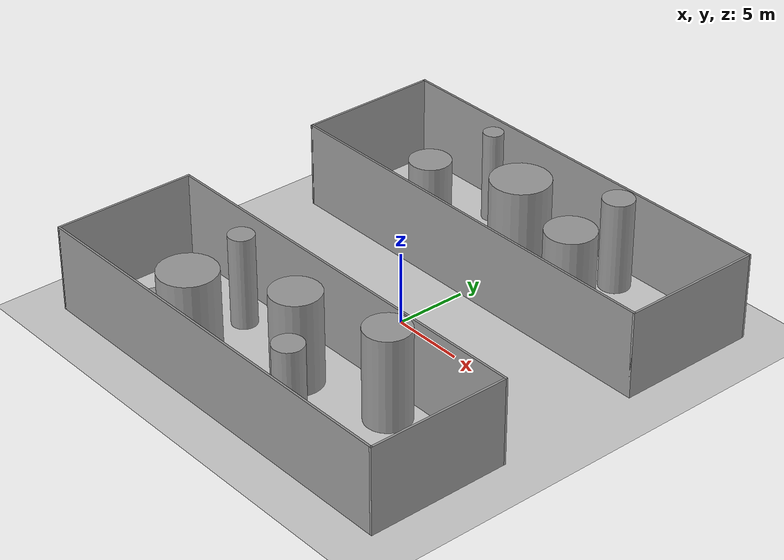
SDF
<sdf version="1.6">
 <world name="default">
  <light name="sun" type="directional">
   <pose>0 0 10 0 -0 0</pose>
   <diffuse>0.8 0.8 0.8 1</diffuse>
   <specular>0.2 0.2 0.2 1</specular>
   <attenuation>
    <range>1000</range>
    <constant>0.9</constant>
    <linear>0.01</linear>
    <quadratic>0.001</quadratic>
   </attenuation>
   <direction>-0.5 0.1 -0.9</direction>
  </light>
  <model name="ground_plane">
   <static>1</static>
   <link name="link">
    <collision name="collision">
     <geometry><plane><normal>0 0 1</normal><size>100 100</size></plane></geometry>
     <surface>
      <contact><collide_bitmask>65535</collide_bitmask></contact>
      <friction><ode><mu>100</mu><mu2>50</mu2></ode></friction>
     </surface>
    </collision>
    <visual name="visual">
     <cast_shadows>0</cast_shadows>
     <geometry><plane><normal>0 0 1</normal><size>100 100</size></plane></geometry>
     <material>
      <script><uri>file://media/materials/scripts/gazebo.material</uri><name>Gazebo/Grey</name></script>
     </material>
    </visual>
   </link>
  </model>
  <gravity>0 0 -9.8</gravity>
  <magnetic_field>6e-06 2.3e-05 -4.2e-05</magnetic_field>
  <atmosphere type="adiabatic"/>
  <physics name="default_physics" default="0" type="ode">
   <max_step_size>0.001</max_step_size>
   <real_time_factor>1</real_time_factor>
   <real_time_update_rate>1000</real_time_update_rate>
  </physics>
  <scene><ambient>0.4 0.4 0.4 1</ambient><background>0.7 0.7 0.7 1</background><shadows>1</shadows></scene>
  <spherical_coordinates>
   <surface_model>EARTH_WGS84</surface_model>
   <latitude_deg>0</latitude_deg>
   <longitude_deg>0</longitude_deg>
   <elevation>0</elevation>
   <heading_deg>0</heading_deg>
  </spherical_coordinates>
  <model name="static_cylinder_clone">
   <link name="link">
    <inertial>
     <mass>1</mass>
     <inertia><ixx>0.145833</ixx><ixy>0</ixy><ixz>0</ixz><iyy>0.145833</iyy><iyz>0</iyz><izz>0.125</izz></inertia>
    </inertial>
    <visual name="visual">
     <geometry><cylinder><radius>1.02374</radius><length>6.41794</length></cylinder></geometry>
     <material>
      <script><name>Gazebo/Grey</name><uri>file://media/materials/scripts/gazebo.material</uri></script>
      <shader type="pixel"/>
      <ambient>0.3 0.3 0.3 1</ambient>
      <diffuse>0.7 0.7 0.7 1</diffuse>
      <specular>0.01 0.01 0.01 1</specular>
      <emissive>0 0 0 1</emissive>
     </material>
    </visual>
    <collision name="collision">
     <geometry><cylinder><radius>1.02374</radius><length>6.41794</length></cylinder></geometry>
     <surface>
      <friction>
       <ode><mu>1</mu><mu2>1</mu2><fdir1>0 0 0</fdir1><slip1>0</slip1><slip2>0</slip2></ode>
       <torsional>
        <coefficient>1</coefficient>
        <patch_radius>0</patch_radius>
        <surface_radius>0</surface_radius>
        <use_patch_radius>1</use_patch_radius>
        <ode><slip>0</slip></ode>
       </torsional>
      </friction>
      <bounce><restitution_coefficient>0</restitution_coefficient><threshold>1e+06</threshold></bounce>
      <contact>
       <collide_without_contact>0</collide_without_contact>
       <collide_without_contact_bitmask>1</collide_without_contact_bitmask>
       <collide_bitmask>1</collide_bitmask>
       <ode>
        <soft_cfm>0</soft_cfm>
        <soft_erp>0.2</soft_erp>
        <kp>1e+13</kp>
        <kd>1</kd>
        <max_vel>0.01</max_vel>
        <min_depth>0</min_depth>
       </ode>
       <bullet>
        <split_impulse>1</split_impulse>
        <split_impulse_penetration_threshold>-0.01</split_impulse_penetration_threshold>
        <soft_cfm>0</soft_cfm>
        <soft_erp>0.2</soft_erp>
        <kp>1e+13</kp>
        <kd>1</kd>
       </bullet>
      </contact>
     </surface>
    </collision>
   </link>
   <static>1</static>
   <pose>4.80393 -12.5539 3.22951 0 -0 0</pose>
  </model>
  <model name="static_cylinder_clone_0">
   <link name="link">
    <inertial>
     <mass>1</mass>
     <inertia><ixx>0.145833</ixx><ixy>0</ixy><ixz>0</ixz><iyy>0.145833</iyy><iyz>0</iyz><izz>0.125</izz></inertia>
    </inertial>
    <visual name="visual">
     <geometry><cylinder><radius>1.54102</radius><length>6.41794</length></cylinder></geometry>
     <material>
      <script><name>Gazebo/Grey</name><uri>file://media/materials/scripts/gazebo.material</uri></script>
      <shader type="pixel"/>
      <ambient>0.3 0.3 0.3 1</ambient>
      <diffuse>0.7 0.7 0.7 1</diffuse>
      <specular>0.01 0.01 0.01 1</specular>
      <emissive>0 0 0 1</emissive>
     </material>
    </visual>
    <collision name="collision">
     <geometry><cylinder><radius>1.54102</radius><length>6.41794</length></cylinder></geometry>
     <surface>
      <friction>
       <ode><mu>1</mu><mu2>1</mu2><fdir1>0 0 0</fdir1><slip1>0</slip1><slip2>0</slip2></ode>
       <torsional>
        <coefficient>1</coefficient>
        <patch_radius>0</patch_radius>
        <surface_radius>0</surface_radius>
        <use_patch_radius>1</use_patch_radius>
        <ode><slip>0</slip></ode>
       </torsional>
      </friction>
      <bounce><restitution_coefficient>0</restitution_coefficient><threshold>1e+06</threshold></bounce>
      <contact>
       <collide_without_contact>0</collide_without_contact>
       <collide_without_contact_bitmask>1</collide_without_contact_bitmask>
       <collide_bitmask>1</collide_bitmask>
       <ode>
        <soft_cfm>0</soft_cfm>
        <soft_erp>0.2</soft_erp>
        <kp>1e+13</kp>
        <kd>1</kd>
        <max_vel>0.01</max_vel>
        <min_depth>0</min_depth>
       </ode>
       <bullet>
        <split_impulse>1</split_impulse>
        <split_impulse_penetration_threshold>-0.01</split_impulse_penetration_threshold>
        <soft_cfm>0</soft_cfm>
        <soft_erp>0.2</soft_erp>
        <kp>1e+13</kp>
        <kd>1</kd>
       </bullet>
      </contact>
     </surface>
    </collision>
   </link>
   <static>1</static>
   <pose>7.21776 -7.21536 3.22951 0 -0 0</pose>
  </model>
  <model name="static_cylinder_clone_3">
   <link name="link">
    <inertial>
     <mass>1</mass>
     <inertia><ixx>0.145833</ixx><ixy>0</ixy><ixz>0</ixz><iyy>0.145833</iyy><iyz>0</iyz><izz>0.125</izz></inertia>
    </inertial>
    <visual name="visual">
     <geometry><cylinder><radius>1.68342</radius><length>6.41794</length></cylinder></geometry>
     <material>
      <script><name>Gazebo/Grey</name><uri>file://media/materials/scripts/gazebo.material</uri></script>
      <shader type="pixel"/>
      <ambient>0.3 0.3 0.3 1</ambient>
      <diffuse>0.7 0.7 0.7 1</diffuse>
      <specular>0.01 0.01 0.01 1</specular>
      <emissive>0 0 0 1</emissive>
     </material>
    </visual>
    <collision name="collision">
     <geometry><cylinder><radius>1.68342</radius><length>6.41794</length></cylinder></geometry>
     <surface>
      <friction>
       <ode><mu>1</mu><mu2>1</mu2><fdir1>0 0 0</fdir1><slip1>0</slip1><slip2>0</slip2></ode>
       <torsional>
        <coefficient>1</coefficient>
        <patch_radius>0</patch_radius>
        <surface_radius>0</surface_radius>
        <use_patch_radius>1</use_patch_radius>
        <ode><slip>0</slip></ode>
       </torsional>
      </friction>
      <bounce><restitution_coefficient>0</restitution_coefficient><threshold>1e+06</threshold></bounce>
      <contact>
       <collide_without_contact>0</collide_without_contact>
       <collide_without_contact_bitmask>1</collide_without_contact_bitmask>
       <collide_bitmask>1</collide_bitmask>
       <ode>
        <soft_cfm>0</soft_cfm>
        <soft_erp>0.2</soft_erp>
        <kp>1e+13</kp>
        <kd>1</kd>
        <max_vel>0.01</max_vel>
        <min_depth>0</min_depth>
       </ode>
       <bullet>
        <split_impulse>1</split_impulse>
        <split_impulse_penetration_threshold>-0.01</split_impulse_penetration_threshold>
        <soft_cfm>0</soft_cfm>
        <soft_erp>0.2</soft_erp>
        <kp>1e+13</kp>
        <kd>1</kd>
       </bullet>
      </contact>
     </surface>
    </collision>
   </link>
   <static>1</static>
   <pose>0.783836 -8.83531 3.22951 0 -0 0</pose>
  </model>
  <model name="static_cylinder_clone_4">
   <link name="link">
    <inertial>
     <mass>1</mass>
     <inertia><ixx>0.145833</ixx><ixy>0</ixy><ixz>0</ixz><iyy>0.145833</iyy><iyz>0</iyz><izz>0.125</izz></inertia>
    </inertial>
    <visual name="visual">
     <geometry><cylinder><radius>1.95541</radius><length>6.41794</length></cylinder></geometry>
     <material>
      <script><name>Gazebo/Grey</name><uri>file://media/materials/scripts/gazebo.material</uri></script>
      <shader type="pixel"/>
      <ambient>0.3 0.3 0.3 1</ambient>
      <diffuse>0.7 0.7 0.7 1</diffuse>
      <specular>0.01 0.01 0.01 1</specular>
      <emissive>0 0 0 1</emissive>
     </material>
    </visual>
    <collision name="collision">
     <geometry><cylinder><radius>1.95541</radius><length>6.41794</length></cylinder></geometry>
     <surface>
      <friction>
       <ode><mu>1</mu><mu2>1</mu2><fdir1>0 0 0</fdir1><slip1>0</slip1><slip2>0</slip2></ode>
       <torsional>
        <coefficient>1</coefficient>
        <patch_radius>0</patch_radius>
        <surface_radius>0</surface_radius>
        <use_patch_radius>1</use_patch_radius>
        <ode><slip>0</slip></ode>
       </torsional>
      </friction>
      <bounce><restitution_coefficient>0</restitution_coefficient><threshold>1e+06</threshold></bounce>
      <contact>
       <collide_without_contact>0</collide_without_contact>
       <collide_without_contact_bitmask>1</collide_without_contact_bitmask>
       <collide_bitmask>1</collide_bitmask>
       <ode>
        <soft_cfm>0</soft_cfm>
        <soft_erp>0.2</soft_erp>
        <kp>1e+13</kp>
        <kd>1</kd>
        <max_vel>0.01</max_vel>
        <min_depth>0</min_depth>
       </ode>
       <bullet>
        <split_impulse>1</split_impulse>
        <split_impulse_penetration_threshold>-0.01</split_impulse_penetration_threshold>
        <soft_cfm>0</soft_cfm>
        <soft_erp>0.2</soft_erp>
        <kp>1e+13</kp>
        <kd>1</kd>
       </bullet>
      </contact>
     </surface>
    </collision>
   </link>
   <static>1</static>
   <pose>-5.18882 -12.2711 3.22951 0 -0 0</pose>
  </model>
  <model name="static_cylinder_clone_5">
   <link name="link">
    <inertial>
     <mass>1</mass>
     <inertia><ixx>0.145833</ixx><ixy>0</ixy><ixz>0</ixz><iyy>0.145833</iyy><iyz>0</iyz><izz>0.125</izz></inertia>
    </inertial>
    <visual name="visual">
     <geometry><cylinder><radius>0.869875</radius><length>6.41794</length></cylinder></geometry>
     <material>
      <script><name>Gazebo/Grey</name><uri>file://media/materials/scripts/gazebo.material</uri></script>
      <shader type="pixel"/>
      <ambient>0.3 0.3 0.3 1</ambient>
      <diffuse>0.7 0.7 0.7 1</diffuse>
      <specular>0.01 0.01 0.01 1</specular>
      <emissive>0 0 0 1</emissive>
     </material>
    </visual>
    <collision name="collision">
     <geometry><cylinder><radius>0.869875</radius><length>6.41794</length></cylinder></geometry>
     <surface>
      <friction>
       <ode><mu>1</mu><mu2>1</mu2><fdir1>0 0 0</fdir1><slip1>0</slip1><slip2>0</slip2></ode>
       <torsional>
        <coefficient>1</coefficient>
        <patch_radius>0</patch_radius>
        <surface_radius>0</surface_radius>
        <use_patch_radius>1</use_patch_radius>
        <ode><slip>0</slip></ode>
       </torsional>
      </friction>
      <bounce><restitution_coefficient>0</restitution_coefficient><threshold>1e+06</threshold></bounce>
      <contact>
       <collide_without_contact>0</collide_without_contact>
       <collide_without_contact_bitmask>1</collide_without_contact_bitmask>
       <collide_bitmask>1</collide_bitmask>
       <ode>
        <soft_cfm>0</soft_cfm>
        <soft_erp>0.2</soft_erp>
        <kp>1e+13</kp>
        <kd>1</kd>
        <max_vel>0.01</max_vel>
        <min_depth>0</min_depth>
       </ode>
       <bullet>
        <split_impulse>1</split_impulse>
        <split_impulse_penetration_threshold>-0.01</split_impulse_penetration_threshold>
        <soft_cfm>0</soft_cfm>
        <soft_erp>0.2</soft_erp>
        <kp>1e+13</kp>
        <kd>1</kd>
       </bullet>
      </contact>
     </surface>
    </collision>
   </link>
   <static>1</static>
   <pose>-6.38748 -7.36179 3.22951 0 -0 0</pose>
  </model>
  <model name="static_cylinder_clone_2">
   <link name="link">
    <inertial>
     <mass>1</mass>
     <inertia><ixx>0.145833</ixx><ixy>0</ixy><ixz>0</ixz><iyy>0.145833</iyy><iyz>0</iyz><izz>0.125</izz></inertia>
    </inertial>
    <visual name="visual">
     <geometry><cylinder><radius>1.07394</radius><length>6.41794</length></cylinder></geometry>
     <material>
      <script><name>Gazebo/Grey</name><uri>file://media/materials/scripts/gazebo.material</uri></script>
      <shader type="pixel"/>
      <ambient>0.3 0.3 0.3 1</ambient>
      <diffuse>0.7 0.7 0.7 1</diffuse>
      <specular>0.01 0.01 0.01 1</specular>
      <emissive>0 0 0 1</emissive>
     </material>
    </visual>
    <collision name="collision">
     <geometry><cylinder><radius>1.07394</radius><length>6.41794</length></cylinder></geometry>
     <surface>
      <friction>
       <ode><mu>1</mu><mu2>1</mu2><fdir1>0 0 0</fdir1><slip1>0</slip1><slip2>0</slip2></ode>
       <torsional>
        <coefficient>1</coefficient>
        <patch_radius>0</patch_radius>
        <surface_radius>0</surface_radius>
        <use_patch_radius>1</use_patch_radius>
        <ode><slip>0</slip></ode>
       </torsional>
      </friction>
      <bounce><restitution_coefficient>0</restitution_coefficient><threshold>1e+06</threshold></bounce>
      <contact>
       <collide_without_contact>0</collide_without_contact>
       <collide_without_contact_bitmask>1</collide_without_contact_bitmask>
       <collide_bitmask>1</collide_bitmask>
       <ode>
        <soft_cfm>0</soft_cfm>
        <soft_erp>0.2</soft_erp>
        <kp>1e+13</kp>
        <kd>1</kd>
        <max_vel>0.01</max_vel>
        <min_depth>0</min_depth>
       </ode>
       <bullet>
        <split_impulse>1</split_impulse>
        <split_impulse_penetration_threshold>-0.01</split_impulse_penetration_threshold>
        <soft_cfm>0</soft_cfm>
        <soft_erp>0.2</soft_erp>
        <kp>1e+13</kp>
        <kd>1</kd>
       </bullet>
      </contact>
     </surface>
    </collision>
   </link>
   <static>1</static>
   <pose>5.5495 13.1609 3.22951 0 -0 0</pose>
  </model>
  <model name="static_cylinder_clone_7">
   <link name="link">
    <inertial>
     <mass>1</mass>
     <inertia><ixx>0.145833</ixx><ixy>0</ixy><ixz>0</ixz><iyy>0.145833</iyy><iyz>0</iyz><izz>0.125</izz></inertia>
    </inertial>
    <visual name="visual">
     <geometry><cylinder><radius>1.70261</radius><length>6.41794</length></cylinder></geometry>
     <material>
      <script><name>Gazebo/Grey</name><uri>file://media/materials/scripts/gazebo.material</uri></script>
      <shader type="pixel"/>
      <ambient>0.3 0.3 0.3 1</ambient>
      <diffuse>0.7 0.7 0.7 1</diffuse>
      <specular>0.01 0.01 0.01 1</specular>
      <emissive>0 0 0 1</emissive>
     </material>
    </visual>
    <collision name="collision">
     <geometry><cylinder><radius>1.70261</radius><length>6.41794</length></cylinder></geometry>
     <surface>
      <friction>
       <ode><mu>1</mu><mu2>1</mu2><fdir1>0 0 0</fdir1><slip1>0</slip1><slip2>0</slip2></ode>
       <torsional>
        <coefficient>1</coefficient>
        <patch_radius>0</patch_radius>
        <surface_radius>0</surface_radius>
        <use_patch_radius>1</use_patch_radius>
        <ode><slip>0</slip></ode>
       </torsional>
      </friction>
      <bounce><restitution_coefficient>0</restitution_coefficient><threshold>1e+06</threshold></bounce>
      <contact>
       <collide_without_contact>0</collide_without_contact>
       <collide_without_contact_bitmask>1</collide_without_contact_bitmask>
       <collide_bitmask>1</collide_bitmask>
       <ode>
        <soft_cfm>0</soft_cfm>
        <soft_erp>0.2</soft_erp>
        <kp>1e+13</kp>
        <kd>1</kd>
        <max_vel>0.01</max_vel>
        <min_depth>0</min_depth>
       </ode>
       <bullet>
        <split_impulse>1</split_impulse>
        <split_impulse_penetration_threshold>-0.01</split_impulse_penetration_threshold>
        <soft_cfm>0</soft_cfm>
        <soft_erp>0.2</soft_erp>
        <kp>1e+13</kp>
        <kd>1</kd>
       </bullet>
      </contact>
     </surface>
    </collision>
   </link>
   <static>1</static>
   <pose>6.34646 8.215 3.22951 0 -0 0</pose>
  </model>
  <model name="static_cylinder_clone_8">
   <link name="link">
    <inertial>
     <mass>1</mass>
     <inertia><ixx>0.145833</ixx><ixy>0</ixy><ixz>0</ixz><iyy>0.145833</iyy><iyz>0</iyz><izz>0.125</izz></inertia>
    </inertial>
    <visual name="visual">
     <geometry><cylinder><radius>0.694724</radius><length>6.41794</length></cylinder></geometry>
     <material>
      <script><name>Gazebo/Grey</name><uri>file://media/materials/scripts/gazebo.material</uri></script>
      <shader type="pixel"/>
      <ambient>0.3 0.3 0.3 1</ambient>
      <diffuse>0.7 0.7 0.7 1</diffuse>
      <specular>0.01 0.01 0.01 1</specular>
      <emissive>0 0 0 1</emissive>
     </material>
    </visual>
    <collision name="collision">
     <geometry><cylinder><radius>0.694724</radius><length>6.41794</length></cylinder></geometry>
     <surface>
      <friction>
       <ode><mu>1</mu><mu2>1</mu2><fdir1>0 0 0</fdir1><slip1>0</slip1><slip2>0</slip2></ode>
       <torsional>
        <coefficient>1</coefficient>
        <patch_radius>0</patch_radius>
        <surface_radius>0</surface_radius>
        <use_patch_radius>1</use_patch_radius>
        <ode><slip>0</slip></ode>
       </torsional>
      </friction>
      <bounce><restitution_coefficient>0</restitution_coefficient><threshold>1e+06</threshold></bounce>
      <contact>
       <collide_without_contact>0</collide_without_contact>
       <collide_without_contact_bitmask>1</collide_without_contact_bitmask>
       <collide_bitmask>1</collide_bitmask>
       <ode>
        <soft_cfm>0</soft_cfm>
        <soft_erp>0.2</soft_erp>
        <kp>1e+13</kp>
        <kd>1</kd>
        <max_vel>0.01</max_vel>
        <min_depth>0</min_depth>
       </ode>
       <bullet>
        <split_impulse>1</split_impulse>
        <split_impulse_penetration_threshold>-0.01</split_impulse_penetration_threshold>
        <soft_cfm>0</soft_cfm>
        <soft_erp>0.2</soft_erp>
        <kp>1e+13</kp>
        <kd>1</kd>
       </bullet>
      </contact>
     </surface>
    </collision>
   </link>
   <static>1</static>
   <pose>-5.85757 12.9997 3.22951 0 -0 0</pose>
  </model>
  <model name="static_cylinder_clone_9">
   <link name="link">
    <inertial>
     <mass>1</mass>
     <inertia><ixx>0.145833</ixx><ixy>0</ixy><ixz>0</ixz><iyy>0.145833</iyy><iyz>0</iyz><izz>0.125</izz></inertia>
    </inertial>
    <visual name="visual">
     <geometry><cylinder><radius>2.03743</radius><length>6.41794</length></cylinder></geometry>
     <material>
      <script><name>Gazebo/Grey</name><uri>file://media/materials/scripts/gazebo.material</uri></script>
      <shader type="pixel"/>
      <ambient>0.3 0.3 0.3 1</ambient>
      <diffuse>0.7 0.7 0.7 1</diffuse>
      <specular>0.01 0.01 0.01 1</specular>
      <emissive>0 0 0 1</emissive>
     </material>
    </visual>
    <collision name="collision">
     <geometry><cylinder><radius>2.03743</radius><length>6.41794</length></cylinder></geometry>
     <surface>
      <friction>
       <ode><mu>1</mu><mu2>1</mu2><fdir1>0 0 0</fdir1><slip1>0</slip1><slip2>0</slip2></ode>
       <torsional>
        <coefficient>1</coefficient>
        <patch_radius>0</patch_radius>
        <surface_radius>0</surface_radius>
        <use_patch_radius>1</use_patch_radius>
        <ode><slip>0</slip></ode>
       </torsional>
      </friction>
      <bounce><restitution_coefficient>0</restitution_coefficient><threshold>1e+06</threshold></bounce>
      <contact>
       <collide_without_contact>0</collide_without_contact>
       <collide_without_contact_bitmask>1</collide_without_contact_bitmask>
       <collide_bitmask>1</collide_bitmask>
       <ode>
        <soft_cfm>0</soft_cfm>
        <soft_erp>0.2</soft_erp>
        <kp>1e+13</kp>
        <kd>1</kd>
        <max_vel>0.01</max_vel>
        <min_depth>0</min_depth>
       </ode>
       <bullet>
        <split_impulse>1</split_impulse>
        <split_impulse_penetration_threshold>-0.01</split_impulse_penetration_threshold>
        <soft_cfm>0</soft_cfm>
        <soft_erp>0.2</soft_erp>
        <kp>1e+13</kp>
        <kd>1</kd>
       </bullet>
      </contact>
     </surface>
    </collision>
   </link>
   <static>1</static>
   <pose>-0.212018 10.1738 3.22951 0 -0 0</pose>
  </model>
  <model name="static_cylinder_clone_10_clone">
   <link name="link">
    <inertial>
     <mass>1</mass>
     <inertia><ixx>0.145833</ixx><ixy>0</ixy><ixz>0</ixz><iyy>0.145833</iyy><iyz>0</iyz><izz>0.125</izz></inertia>
    </inertial>
    <visual name="visual">
     <geometry><cylinder><radius>1.35079</radius><length>0.201391</length></cylinder></geometry>
     <material>
      <script><name>Gazebo/Grey</name><uri>file://media/materials/scripts/gazebo.material</uri></script>
      <shader type="pixel"/>
      <ambient>0.3 0.3 0.3 1</ambient>
      <diffuse>0.7 0.7 0.7 1</diffuse>
      <specular>0.01 0.01 0.01 1</specular>
      <emissive>0 0 0 1</emissive>
     </material>
    </visual>
    <collision name="collision">
     <geometry><cylinder><radius>1.35079</radius><length>0.201391</length></cylinder></geometry>
     <surface>
      <friction>
       <ode><mu>1</mu><mu2>1</mu2><fdir1>0 0 0</fdir1><slip1>0</slip1><slip2>0</slip2></ode>
       <torsional>
        <coefficient>1</coefficient>
        <patch_radius>0</patch_radius>
        <surface_radius>0</surface_radius>
        <use_patch_radius>1</use_patch_radius>
        <ode><slip>0</slip></ode>
       </torsional>
      </friction>
      <bounce><restitution_coefficient>0</restitution_coefficient><threshold>1e+06</threshold></bounce>
      <contact>
       <collide_without_contact>0</collide_without_contact>
       <collide_without_contact_bitmask>1</collide_without_contact_bitmask>
       <collide_bitmask>1</collide_bitmask>
       <ode>
        <soft_cfm>0</soft_cfm>
        <soft_erp>0.2</soft_erp>
        <kp>1e+13</kp>
        <kd>1</kd>
        <max_vel>0.01</max_vel>
        <min_depth>0</min_depth>
       </ode>
       <bullet>
        <split_impulse>1</split_impulse>
        <split_impulse_penetration_threshold>-0.01</split_impulse_penetration_threshold>
        <soft_cfm>0</soft_cfm>
        <soft_erp>0.2</soft_erp>
        <kp>1e+13</kp>
        <kd>1</kd>
       </bullet>
      </contact>
     </surface>
    </collision>
   </link>
   <static>1</static>
   <pose>12 10 0 0 -0 0</pose>
  </model>
  <model name="static_cylinder_clone_10_clone_clone">
   <link name="link">
    <inertial>
     <mass>1</mass>
     <inertia><ixx>0.145833</ixx><ixy>0</ixy><ixz>0</ixz><iyy>0.145833</iyy><iyz>0</iyz><izz>0.125</izz></inertia>
    </inertial>
    <visual name="visual">
     <geometry><cylinder><radius>1.35079</radius><length>0.201391</length></cylinder></geometry>
     <material>
      <script><name>Gazebo/Grey</name><uri>file://media/materials/scripts/gazebo.material</uri></script>
      <shader type="pixel"/>
      <ambient>0.3 0.3 0.3 1</ambient>
      <diffuse>0.7 0.7 0.7 1</diffuse>
      <specular>0.01 0.01 0.01 1</specular>
      <emissive>0 0 0 1</emissive>
     </material>
    </visual>
    <collision name="collision">
     <geometry><cylinder><radius>1.35079</radius><length>0.201391</length></cylinder></geometry>
     <surface>
      <friction>
       <ode><mu>1</mu><mu2>1</mu2><fdir1>0 0 0</fdir1><slip1>0</slip1><slip2>0</slip2></ode>
       <torsional>
        <coefficient>1</coefficient>
        <patch_radius>0</patch_radius>
        <surface_radius>0</surface_radius>
        <use_patch_radius>1</use_patch_radius>
        <ode><slip>0</slip></ode>
       </torsional>
      </friction>
      <bounce><restitution_coefficient>0</restitution_coefficient><threshold>1e+06</threshold></bounce>
      <contact>
       <collide_without_contact>0</collide_without_contact>
       <collide_without_contact_bitmask>1</collide_without_contact_bitmask>
       <collide_bitmask>1</collide_bitmask>
       <ode>
        <soft_cfm>0</soft_cfm>
        <soft_erp>0.2</soft_erp>
        <kp>1e+13</kp>
        <kd>1</kd>
        <max_vel>0.01</max_vel>
        <min_depth>0</min_depth>
       </ode>
       <bullet>
        <split_impulse>1</split_impulse>
        <split_impulse_penetration_threshold>-0.01</split_impulse_penetration_threshold>
        <soft_cfm>0</soft_cfm>
        <soft_erp>0.2</soft_erp>
        <kp>1e+13</kp>
        <kd>1</kd>
       </bullet>
      </contact>
     </surface>
    </collision>
   </link>
   <static>1</static>
   <pose>12 -10 0 0 -0 0</pose>
  </model>
  <model name="static_cylinder_clone_10_clone_clone_clone">
   <link name="link">
    <inertial>
     <mass>1</mass>
     <inertia><ixx>0.145833</ixx><ixy>0</ixy><ixz>0</ixz><iyy>0.145833</iyy><iyz>0</iyz><izz>0.125</izz></inertia>
    </inertial>
    <visual name="visual">
     <geometry><cylinder><radius>1.35079</radius><length>0.201391</length></cylinder></geometry>
     <material>
      <script><name>Gazebo/Grey</name><uri>file://media/materials/scripts/gazebo.material</uri></script>
      <shader type="pixel"/>
      <ambient>0.3 0.3 0.3 1</ambient>
      <diffuse>0.7 0.7 0.7 1</diffuse>
      <specular>0.01 0.01 0.01 1</specular>
      <emissive>0 0 0 1</emissive>
     </material>
    </visual>
    <collision name="collision">
     <geometry><cylinder><radius>1.35079</radius><length>0.201391</length></cylinder></geometry>
     <surface>
      <friction>
       <ode><mu>1</mu><mu2>1</mu2><fdir1>0 0 0</fdir1><slip1>0</slip1><slip2>0</slip2></ode>
       <torsional>
        <coefficient>1</coefficient>
        <patch_radius>0</patch_radius>
        <surface_radius>0</surface_radius>
        <use_patch_radius>1</use_patch_radius>
        <ode><slip>0</slip></ode>
       </torsional>
      </friction>
      <bounce><restitution_coefficient>0</restitution_coefficient><threshold>1e+06</threshold></bounce>
      <contact>
       <collide_without_contact>0</collide_without_contact>
       <collide_without_contact_bitmask>1</collide_without_contact_bitmask>
       <collide_bitmask>1</collide_bitmask>
       <ode>
        <soft_cfm>0</soft_cfm>
        <soft_erp>0.2</soft_erp>
        <kp>1e+13</kp>
        <kd>1</kd>
        <max_vel>0.01</max_vel>
        <min_depth>0</min_depth>
       </ode>
       <bullet>
        <split_impulse>1</split_impulse>
        <split_impulse_penetration_threshold>-0.01</split_impulse_penetration_threshold>
        <soft_cfm>0</soft_cfm>
        <soft_erp>0.2</soft_erp>
        <kp>1e+13</kp>
        <kd>1</kd>
       </bullet>
      </contact>
     </surface>
    </collision>
   </link>
   <static>1</static>
   <pose>-12 -10 0 0 -0 0</pose>
  </model>
  <model name="simple_maze_3">
   <pose>0 -10 0 0 -0 0</pose>
   <link name="Wall_2">
    <collision name="Wall_2_Collision">
     <geometry><box><size>10 0.15 6</size></box></geometry>
     <pose>0 0 3 0 -0 0</pose>
    </collision>
    <visual name="Wall_2_Visual">
     <pose>0 0 3 0 -0 0</pose>
     <geometry><box><size>10 0.15 6</size></box></geometry>
     <material>
      <script><uri>file://media/materials/scripts/gazebo.material</uri><name>Gazebo/Grey</name></script>
      <ambient>1 1 1 1</ambient>
     </material>
     <meta><layer>0</layer></meta>
    </visual>
    <pose>-14.925 0 0 0 0 -1.5709</pose>
   </link>
   <link name="Wall_3">
    <collision name="Wall_3_Collision">
     <geometry><box><size>30.001 0.15 6</size></box></geometry>
     <pose>0 0 3 0 -0 0</pose>
    </collision>
    <visual name="Wall_3_Visual">
     <pose>0 0 3 0 -0 0</pose>
     <geometry><box><size>30.001 0.15 6</size></box></geometry>
     <material>
      <script><uri>file://media/materials/scripts/gazebo.material</uri><name>Gazebo/Grey</name></script>
      <ambient>1 1 1 1</ambient>
     </material>
     <meta><layer>0</layer></meta>
    </visual>
    <pose>3e-06 -4.925 0 0 -0 0</pose>
   </link>
   <link name="Wall_4">
    <collision name="Wall_4_Collision">
     <geometry><box><size>10 0.15 6</size></box></geometry>
     <pose>0 0 3 0 -0 0</pose>
    </collision>
    <visual name="Wall_4_Visual">
     <pose>0 0 3 0 -0 0</pose>
     <geometry><box><size>10 0.15 6</size></box></geometry>
     <material>
      <script><uri>file://media/materials/scripts/gazebo.material</uri><name>Gazebo/Grey</name></script>
      <ambient>1 1 1 1</ambient>
     </material>
     <meta><layer>0</layer></meta>
    </visual>
    <pose>14.9255 0 0 0 -0 1.5708</pose>
   </link>
   <link name="Wall_5">
    <collision name="Wall_5_Collision">
     <geometry><box><size>30 0.15 6</size></box></geometry>
     <pose>0 0 3 0 -0 0</pose>
    </collision>
    <visual name="Wall_5_Visual">
     <pose>0 0 3 0 -0 0</pose>
     <geometry><box><size>30 0.15 6</size></box></geometry>
     <material>
      <script><uri>file://media/materials/scripts/gazebo.material</uri><name>Gazebo/Grey</name></script>
      <ambient>1 1 1 1</ambient>
     </material>
     <meta><layer>0</layer></meta>
    </visual>
    <pose>0.000503 4.925 0 0 -0 3.14159</pose>
   </link>
   <static>1</static>
  </model>
  <model name="simple_maze_3_0">
   <pose>0 10 0 0 -0 0</pose>
   <link name="Wall_2">
    <collision name="Wall_2_Collision">
     <geometry><box><size>10 0.15 6</size></box></geometry>
     <pose>0 0 3 0 -0 0</pose>
    </collision>
    <visual name="Wall_2_Visual">
     <pose>0 0 3 0 -0 0</pose>
     <geometry><box><size>10 0.15 6</size></box></geometry>
     <material>
      <script><uri>file://media/materials/scripts/gazebo.material</uri><name>Gazebo/Grey</name></script>
      <ambient>1 1 1 1</ambient>
     </material>
     <meta><layer>0</layer></meta>
    </visual>
    <pose>-14.925 0 0 0 0 -1.5709</pose>
   </link>
   <link name="Wall_3">
    <collision name="Wall_3_Collision">
     <geometry><box><size>30.001 0.15 6</size></box></geometry>
     <pose>0 0 3 0 -0 0</pose>
    </collision>
    <visual name="Wall_3_Visual">
     <pose>0 0 3 0 -0 0</pose>
     <geometry><box><size>30.001 0.15 6</size></box></geometry>
     <material>
      <script><uri>file://media/materials/scripts/gazebo.material</uri><name>Gazebo/Grey</name></script>
      <ambient>1 1 1 1</ambient>
     </material>
     <meta><layer>0</layer></meta>
    </visual>
    <pose>3e-06 -4.925 0 0 -0 0</pose>
   </link>
   <link name="Wall_4">
    <collision name="Wall_4_Collision">
     <geometry><box><size>10 0.15 6</size></box></geometry>
     <pose>0 0 3 0 -0 0</pose>
    </collision>
    <visual name="Wall_4_Visual">
     <pose>0 0 3 0 -0 0</pose>
     <geometry><box><size>10 0.15 6</size></box></geometry>
     <material>
      <script><uri>file://media/materials/scripts/gazebo.material</uri><name>Gazebo/Grey</name></script>
      <ambient>1 1 1 1</ambient>
     </material>
     <meta><layer>0</layer></meta>
    </visual>
    <pose>14.9255 0 0 0 -0 1.5708</pose>
   </link>
   <link name="Wall_5">
    <collision name="Wall_5_Collision">
     <geometry><box><size>30 0.15 6</size></box></geometry>
     <pose>0 0 3 0 -0 0</pose>
    </collision>
    <visual name="Wall_5_Visual">
     <pose>0 0 3 0 -0 0</pose>
     <geometry><box><size>30 0.15 6</size></box></geometry>
     <material>
      <script><uri>file://media/materials/scripts/gazebo.material</uri><name>Gazebo/Grey</name></script>
      <ambient>1 1 1 1</ambient>
     </material>
     <meta><layer>0</layer></meta>
    </visual>
    <pose>0.000503 4.925 0 0 -0 3.14159</pose>
   </link>
   <static>1</static>
  </model>
  <model name="static_cylinder_clone_8_clone">
   <link name="link">
    <inertial>
     <mass>1</mass>
     <inertia><ixx>0.145833</ixx><ixy>0</ixy><ixz>0</ixz><iyy>0.145833</iyy><iyz>0</iyz><izz>0.125</izz></inertia>
    </inertial>
    <visual name="visual">
     <geometry><cylinder><radius>1.41236</radius><length>6.41794</length></cylinder></geometry>
     <material>
      <script><name>Gazebo/Grey</name><uri>file://media/materials/scripts/gazebo.material</uri></script>
      <shader type="pixel"/>
      <ambient>0.3 0.3 0.3 1</ambient>
      <diffuse>0.7 0.7 0.7 1</diffuse>
      <specular>0.01 0.01 0.01 1</specular>
      <emissive>0 0 0 1</emissive>
     </material>
    </visual>
    <collision name="collision">
     <geometry><cylinder><radius>1.41236</radius><length>6.41794</length></cylinder></geometry>
     <surface>
      <friction>
       <ode><mu>1</mu><mu2>1</mu2><fdir1>0 0 0</fdir1><slip1>0</slip1><slip2>0</slip2></ode>
       <torsional>
        <coefficient>1</coefficient>
        <patch_radius>0</patch_radius>
        <surface_radius>0</surface_radius>
        <use_patch_radius>1</use_patch_radius>
        <ode><slip>0</slip></ode>
       </torsional>
      </friction>
      <bounce><restitution_coefficient>0</restitution_coefficient><threshold>1e+06</threshold></bounce>
      <contact>
       <collide_without_contact>0</collide_without_contact>
       <collide_without_contact_bitmask>1</collide_without_contact_bitmask>
       <collide_bitmask>1</collide_bitmask>
       <ode>
        <soft_cfm>0</soft_cfm>
        <soft_erp>0.2</soft_erp>
        <kp>1e+13</kp>
        <kd>1</kd>
        <max_vel>0.01</max_vel>
        <min_depth>0</min_depth>
       </ode>
       <bullet>
        <split_impulse>1</split_impulse>
        <split_impulse_penetration_threshold>-0.01</split_impulse_penetration_threshold>
        <soft_cfm>0</soft_cfm>
        <soft_erp>0.2</soft_erp>
        <kp>1e+13</kp>
        <kd>1</kd>
       </bullet>
      </contact>
     </surface>
    </collision>
   </link>
   <static>1</static>
   <pose>-5.79241 7.43941 3.22951 0 -0 0</pose>
  </model>
  <model name="static_cylinder_clone_10_clone_clone_clone_clone">
   <link name="link">
    <inertial>
     <mass>1</mass>
     <inertia><ixx>0.145833</ixx><ixy>0</ixy><ixz>0</ixz><iyy>0.145833</iyy><iyz>0</iyz><izz>0.125</izz></inertia>
    </inertial>
    <visual name="visual">
     <geometry><cylinder><radius>1.35079</radius><length>0.201391</length></cylinder></geometry>
     <material>
      <script><name>Gazebo/Grey</name><uri>file://media/materials/scripts/gazebo.material</uri></script>
      <shader type="pixel"/>
      <ambient>0.3 0.3 0.3 1</ambient>
      <diffuse>0.7 0.7 0.7 1</diffuse>
      <specular>0.01 0.01 0.01 1</specular>
      <emissive>0 0 0 1</emissive>
     </material>
    </visual>
    <collision name="collision">
     <geometry><cylinder><radius>1.35079</radius><length>0.201391</length></cylinder></geometry>
     <surface>
      <friction>
       <ode><mu>1</mu><mu2>1</mu2><fdir1>0 0 0</fdir1><slip1>0</slip1><slip2>0</slip2></ode>
       <torsional>
        <coefficient>1</coefficient>
        <patch_radius>0</patch_radius>
        <surface_radius>0</surface_radius>
        <use_patch_radius>1</use_patch_radius>
        <ode><slip>0</slip></ode>
       </torsional>
      </friction>
      <bounce><restitution_coefficient>0</restitution_coefficient><threshold>1e+06</threshold></bounce>
      <contact>
       <collide_without_contact>0</collide_without_contact>
       <collide_without_contact_bitmask>1</collide_without_contact_bitmask>
       <collide_bitmask>1</collide_bitmask>
       <ode>
        <soft_cfm>0</soft_cfm>
        <soft_erp>0.2</soft_erp>
        <kp>1e+13</kp>
        <kd>1</kd>
        <max_vel>0.01</max_vel>
        <min_depth>0</min_depth>
       </ode>
       <bullet>
        <split_impulse>1</split_impulse>
        <split_impulse_penetration_threshold>-0.01</split_impulse_penetration_threshold>
        <soft_cfm>0</soft_cfm>
        <soft_erp>0.2</soft_erp>
        <kp>1e+13</kp>
        <kd>1</kd>
       </bullet>
      </contact>
     </surface>
    </collision>
   </link>
   <static>1</static>
   <pose>-12.3912 10.3061 0 0 -0 0</pose>
  </model>
 </world>
</sdf>
